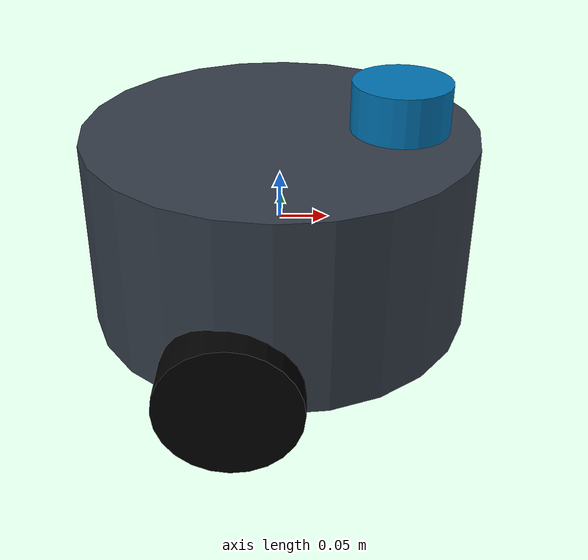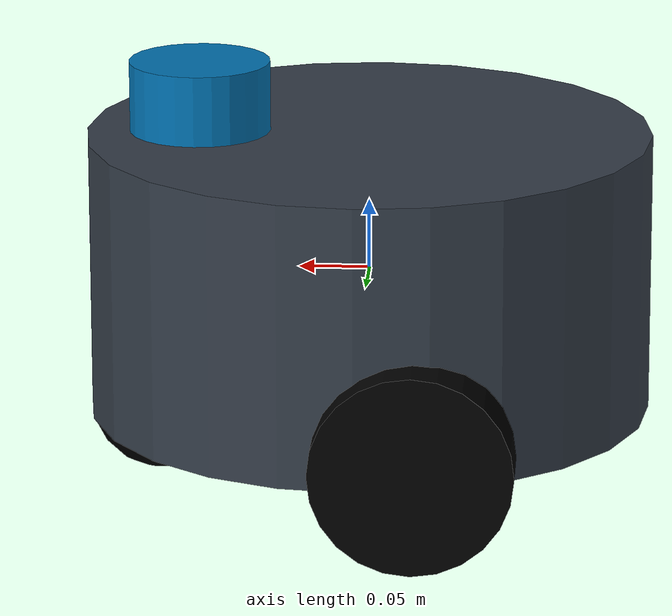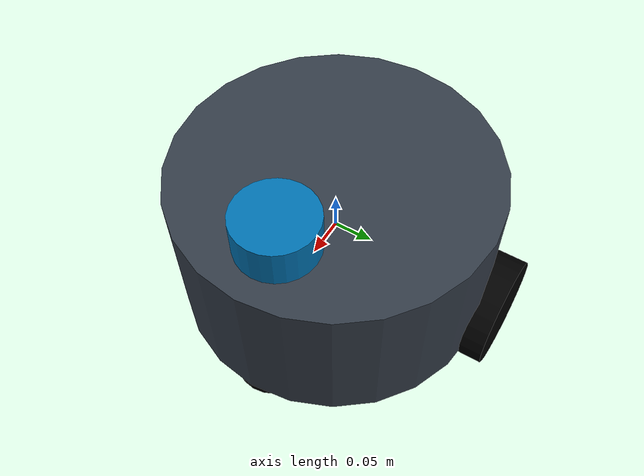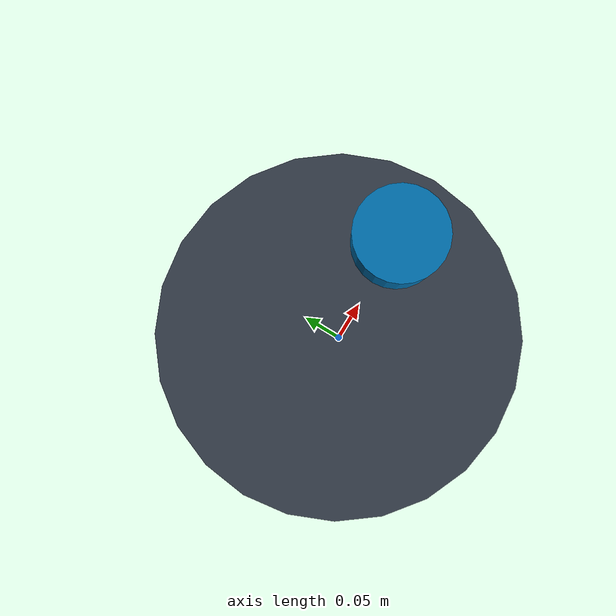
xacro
<?xml version="1.0" ?>
<robot name="avb_bot" xmlns:xacro="https://www.ros.org/wiki/xacro" >
 <material name="black">
    <color rgba="0.0 0.0 0.0 1.0"/>
  </material>
  <material name="blue">
    <color rgba="0.203125 0.23828125 0.28515625 1.0"/>
  </material>
<!-- gazebo plugin -->

<gazebo>
    <plugin filename="libgazebo_ros_diff_drive.so" name="differential_drive_controller">
      <alwaysOn>true</alwaysOn>
      <updateRate>20</updateRate>
      <leftJoint>left_wheel_joint</leftJoint>
      <rightJoint>right_wheel_joint</rightJoint>
      <wheelSeparation>0.4</wheelSeparation>
      <wheelDiameter>0.14</wheelDiameter>
      <torque>0.01</torque>
      <commandTopic>cmd_vel</commandTopic>
      <odometryTopic>odom</odometryTopic>
      <odometryFrame>odom</odometryFrame>
      <robotBaseFrame>base_link</robotBaseFrame>
    </plugin>
  </gazebo>

  <gazebo reference="base_link">
    <material>Gazebo/Blue</material>
  </gazebo>
  <gazebo reference="right_wheel">
    <material>Gazebo/Black</material>
  </gazebo>
  <gazebo reference="left_wheel">
    <material>Gazebo/Black</material>
  </gazebo>

 <gazebo reference="sensor_laser">
    <sensor type="ray" name="head_hokuyo_sensor">
      <pose>0 0 0 0 0 0</pose>
      <visualize>true</visualize>
      <update_rate>20</update_rate>
      <ray>
        <scan>
          <horizontal>
            <samples>720</samples>
            <resolution>1</resolution>
            <min_angle>-1.570796</min_angle>
            <max_angle>1.570796</max_angle>
          </horizontal>
        </scan>
        <range>
          <min>0.10</min>
          <max>10.0</max>
          <resolution>0.01</resolution>
        </range>
        <noise>
          <type>gaussian</type>
          <mean>0.0</mean>
          <stddev>0.01</stddev>
        </noise>
      </ray>
      <plugin name="gazebo_ros_head_hokuyo_controller" filename="libgazebo_ros_laser.so">
        <topicName>/avb_bot/laser/scan</topicName>
        <frameName>sensor_laser</frameName>
      </plugin>
    </sensor>
  </gazebo>

<!-- base_link -->

<link name="base_link">
    <visual>
      <origin rpy="0 0 0" xyz="0 0 0"/>
      <geometry>
        <cylinder length="0.2" radius="0.2"/>
      </geometry>
      <material name="blue"/>
    </visual>

    <collision name="collision_chassis">
     <geometry>
      <cylinder length="0.2" radius="0.2"/>
     </geometry>
    </collision>
    <inertial>
     <mass value="1.0"/>
      <inertia ixx="0.0133" iyy="0.0133" izz="0.02"
      ixy="0" ixz="0" iyz="0"/>
    </inertial>
  </link>

  <!--   Link for right wheel  -->
  <link name="right_wheel">
   <visual name="link_right_wheel_visual">
    <origin rpy="0 1.5707 1.5707" xyz="0 0 0"/>
    <geometry>
     <cylinder length="0.05" radius="0.070"/>
    </geometry>
    <material name="black"/>
   </visual>

   <collision name="link_right_wheel_collision">
      <origin rpy="0 1.5707 1.5707" xyz="0 0 0" />
      <geometry>
        <cylinder length="0.05" radius="0.070"/>
      </geometry>
    </collision>

   <inertial>
    <mass value="0.2"/>
    <origin rpy="0 1.5707 1.5707" xyz="0 0 0"/>
    <inertia ixx="1.433e-4" iyy="1.433e-4" izz="2.45e-4"
      ixy="0" ixz="0" iyz="0"/>
   </inertial>
  </link>

  <!--   Joint for right wheel  -->

  <joint name="right_wheel_joint" type="continuous">
   <axis xyz="0 -1 0"/>
   <parent link="base_link"/>
   <child link="right_wheel"/>
   <origin rpy="0 0 0" xyz="-0.04 0.2 -0.08"/>
   <limit effort="10000" velocity="1000"/>
   <joint_properties damping="1.0" friction="1.0" />
  </joint>

  <!--   Link for left wheel -->

  <link name="left_wheel">
   <visual name="link_left_wheel_visual">
    <origin rpy="0 1.5707 1.5707" xyz="0 0 0"/>
    <geometry>
     <cylinder length="0.05" radius="0.070"/>
    </geometry>
    <material name="black"/>
   </visual>

   <collision name="link_right_wheel_collision">
      <origin rpy="0 1.5707 1.5707" xyz="0 0 0" />
      <geometry>
        <cylinder length="0.05" radius="0.070"/>
      </geometry>
    </collision>

   <inertial>
    <mass value="0.2"/>
    <origin rpy="0 1.5707 1.5707" xyz="0 0 0"/>
    <inertia ixx="1.433e-4" iyy="1.433e-4" izz="2.45e-4"
      ixy="0" ixz="0" iyz="0"/>
   </inertial>
  </link>

   <!--  Joint for left wheel -->

  <joint name="left_wheel_joint" type="continuous">
   <axis xyz="0 -1 0"/>
   <parent link="base_link"/>
   <child link="left_wheel"/>
   <origin rpy="0 0 0" xyz="-0.04 -0.2 -0.08"/>
   <limit effort="10000" velocity="1000"/>
   <joint_properties damping="1.0" friction="1.0" />
  </joint>

  <!-- link for caster wheel -->
  <link name="caster_wheel">
   <visual name="caster_visual">
    <origin rpy="0 0 0" xyz="0 0 0"/>
    <geometry>
     <sphere radius="0.05"/>
    </geometry>
    <material name="black"/>
   </visual>

   <collision name="caster_collsion">
    <origin rpy="0 0 0" xyz="0 0 0"/>
    <geometry>
     <sphere radius="0.05"/>
    </geometry>
   </collision>

   <inertial>
    <mass value="0.1"/>
    <origin rpy="0 0 0" xyz="0 0 0"/>
    <inertia ixx="1e-4" ixy="0" ixz="0" iyy="1e-4" iyz="0" izz="1e-4"/>
   </inertial>
  </link>

 <joint name="caster_joint" type="continuous">
  <axis xyz="0 -1 0"/>
  <parent link="base_link"/>
  <child link="caster_wheel"/>
  <origin rpy="0 0 0" xyz="0.15 0 -0.1"/>
  <limit effort="10000" velocity="1000"/>
  <joint_properties damping="1.0" friction="1.0" />
 </joint>

<!-- Laser Sensor link -->
 <link name="sensor_laser">
    <inertial>
      <origin xyz="0 0 0" rpy="0 0 0" />
      <mass value="0.1" />
      <inertia ixx="1.4583e-4" ixy="0" ixz="0" iyy="1.4583e-4" iyz="0" izz="1.25e-4"/>
    </inertial>

    <visual>
      <origin xyz="0 0 0" rpy="0 0 0" />
      <geometry>
        <cylinder radius="0.05" length="0.1"/>
      </geometry>
    </visual>

    <collision>
      <origin xyz="0 0 0" rpy="0 0 0"/>
      <geometry>
        <cylinder radius="0.05" length="0.1"/>
      </geometry>
    </collision>
  </link>

  <joint name="joint_sensor_laser" type="fixed">
    <origin xyz="0.12 0 0.1" rpy="0 0 0"/>
    <parent link="base_link"/>
    <child link="sensor_laser"/>
  </joint>

</robot>
